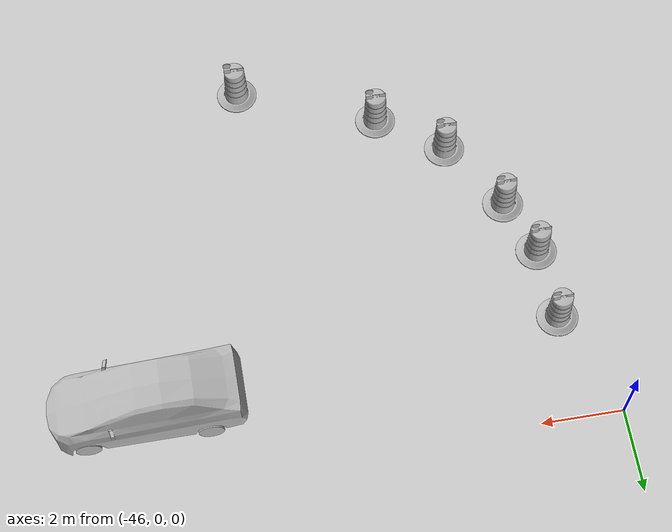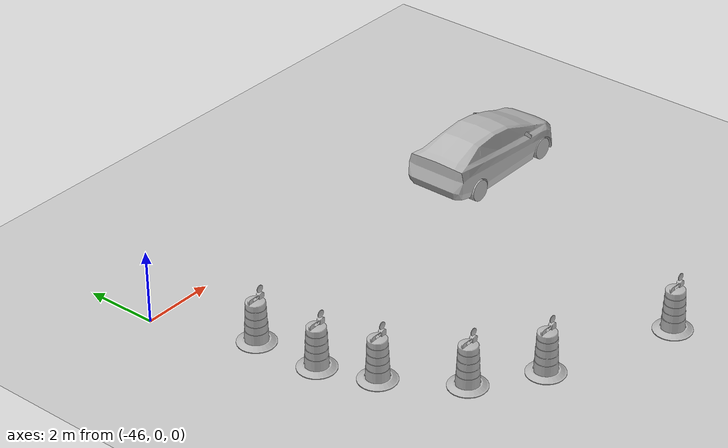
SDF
<sdf version="1.6">
 <world name="default">
  <model name="ground_plane">
   <static>1</static>
   <link name="link">
    <collision name="collision">
     <geometry><plane><normal>0 0 1</normal><size>100 100</size></plane></geometry>
     <surface>
      <contact><collide_bitmask>65535</collide_bitmask></contact>
      <friction><ode><mu>100</mu><mu2>50</mu2></ode></friction>
     </surface>
    </collision>
    <visual name="visual">
     <cast_shadows>0</cast_shadows>
     <geometry><plane><normal>0 0 1</normal><size>100 100</size></plane></geometry>
     <material>
      <script><uri>file://media/materials/scripts/gazebo.material</uri><name>Gazebo/Grey</name></script>
     </material>
    </visual>
   </link>
  </model>
  <model name="prius">
   <link name="base_link">
    <inertial>
     <mass>1</mass>
     <inertia><ixx>0.001</ixx><ixy>0</ixy><ixz>0</ixz><iyy>0.001</iyy><iyz>0</iyz><izz>0.001</izz></inertia>
    </inertial>
   </link>
   <link name="chassis">
    <pose>1.45 0 0 0 -0 1.57</pose>
    <inertial>
     <pose>-0 -0.002735 0.483209 0 -0 1.5708</pose>
     <mass>1371</mass>
     <inertia>
      <ixx>2591.3</ixx>
      <ixy>0.000184475</ixy>
      <ixz>-0.702035</ixz>
      <iyy>651.702</iyy>
      <iyz>2.57872e-06</iyz>
      <izz>2744.57</izz>
     </inertia>
    </inertial>
    <collision name="chassis_collision">
     <pose>0 0.05 0.625 0 -0 0</pose>
     <geometry><box><size>1.7526 2.1 0.95</size></box></geometry>
    </collision>
    <collision name="chassis_fixed_joint_lump__front_bumper_collision_1">
     <pose>0 -2 0.458488 0 -0 0</pose>
     <geometry><box><size>1.33728 0.48 0.566691</size></box></geometry>
    </collision>
    <collision name="chassis_fixed_joint_lump__hood_collision_2">
     <pose>0 -1.90084 0.676305 0.341247 -0 0</pose>
     <geometry><box><size>1.59797 0.493107 0.265468</size></box></geometry>
    </collision>
    <collision name="chassis_fixed_joint_lump__windshield_collision_3">
     <pose>0 -0.875105 1.03227 0.335476 -0 0</pose>
     <geometry><box><size>1.16838 1.65425 0.272347</size></box></geometry>
    </collision>
    <collision name="chassis_fixed_joint_lump__top_front_collision_4">
     <pose>0 0.161236 1.38604 0.13503 -0 0</pose>
     <geometry><box><size>1.27915 0.625988 0.171868</size></box></geometry>
    </collision>
    <collision name="chassis_fixed_joint_lump__top_rear_collision_5">
     <pose>0 0.817696 1.36007 -0.068997 0 0</pose>
     <geometry><box><size>1.28513 0.771189 0.226557</size></box></geometry>
    </collision>
    <collision name="chassis_fixed_joint_lump__rear_window_collision_6">
     <pose>0 1.64053 1.17513 -0.262017 0 0</pose>
     <geometry><box><size>1.26785 1.11634 0.244286</size></box></geometry>
    </collision>
    <collision name="chassis_fixed_joint_lump__trunk_collision_7">
     <pose>0 1.63706 0.88818 0 -0 0</pose>
     <geometry><box><size>1.78806 1.13899 0.482746</size></box></geometry>
    </collision>
    <collision name="chassis_fixed_joint_lump__back_bumper_collision_8">
     <pose>0 2.05445 0.57787 0 -0 0</pose>
     <geometry><box><size>1.78165 0.512093 0.581427</size></box></geometry>
    </collision>
    <visual name="chassis_visual">
     <geometry>
      <mesh><scale>0.01 0.01 0.01</scale><uri>model://../../prius_description/meshes/hybrid_body.obj</uri></mesh>
     </geometry>
    </visual>
    <sensor name="center_laser_sensor" type="ray">
     <ray>
      <scan>
       <horizontal>
        <samples>512</samples>
        <resolution>1</resolution>
        <min_angle>-3.14</min_angle>
        <max_angle>3.14</max_angle>
       </horizontal>
       <vertical><samples>16</samples><min_angle>-0.1</min_angle><max_angle>-0.35</max_angle></vertical>
      </scan>
      <range><min>0.2</min><max>30</max><resolution>0.01</resolution></range>
     </ray>
     <plugin name="center_laser" filename="libgazebo_ros_block_laser.so">
      <topicName>/prius/center_laser/scan</topicName>
      <frameName>center_laser_link</frameName>
      <gaussianNoise>0.01</gaussianNoise>
      <robotNamespace>/</robotNamespace>
     </plugin>
     <always_on>1</always_on>
     <update_rate>30</update_rate>
     <visualize>0</visualize>
     <pose>0 0.4 1.8 0 0 -1.5707</pose>
    </sensor>
    <sensor name="front_camera_sensor" type="camera">
     <update_rate>30</update_rate>
     <camera name="front_camera">
      <horizontal_fov>1.39626</horizontal_fov>
      <image><width>800</width><height>800</height><format>R8G8B8</format></image>
      <clip><near>0.02</near><far>300</far></clip>
      <noise><type>gaussian</type><mean>0</mean><stddev>0.007</stddev></noise>
     </camera>
     <plugin name="front_camera_controller" filename="libgazebo_ros_camera.so">
      <alwaysOn>1</alwaysOn>
      <updateRate>0.0</updateRate>
      <cameraName>/prius/front_camera</cameraName>
      <imageTopicName>image_raw</imageTopicName>
      <cameraInfoTopicName>/prius/front_camera_info</cameraInfoTopicName>
      <frameName>camera_link</frameName>
      <hackBaseline>0.07</hackBaseline>
      <distortionK1>0.0</distortionK1>
      <distortionK2>0.0</distortionK2>
      <distortionK3>0.0</distortionK3>
      <distortionT1>0.0</distortionT1>
      <distortionT2>0.0</distortionT2>
      <robotNamespace>/</robotNamespace>
     </plugin>
     <pose>0 -0.4 1.4 0 0.05 -1.5707</pose>
    </sensor>
   </link>
   <joint name="base_link_connection" type="revolute">
    <child>chassis</child>
    <parent>base_link</parent>
    <axis>
     <limit><lower>0</lower><upper>0</upper></limit>
     <dynamics>
      <damping>0</damping>
      <friction>0</friction>
      <spring_reference>0</spring_reference>
      <spring_stiffness>0</spring_stiffness>
     </dynamics>
     <use_parent_model_frame>1</use_parent_model_frame>
     <xyz>0 0 1</xyz>
    </axis>
    <physics><ode><limit><cfm>0</cfm><erp>0.2</erp></limit></ode></physics>
   </joint>
   <link name="fl_axle">
    <pose>2.86061 0.765877 0.3 0 -0 1.57</pose>
    <inertial>
     <mass>1</mass>
     <inertia><ixx>0.004</ixx><ixy>0</ixy><ixz>0</ixz><iyy>0.004</iyy><iyz>0</iyz><izz>0.004</izz></inertia>
    </inertial>
   </link>
   <joint name="front_left_steer_joint" type="revolute">
    <child>fl_axle</child>
    <parent>chassis</parent>
    <axis>
     <xyz>0 0 1</xyz>
     <limit><lower>-1e+16</lower><upper>1e+16</upper></limit>
     <dynamics><spring_reference>0</spring_reference><spring_stiffness>0</spring_stiffness></dynamics>
     <use_parent_model_frame>1</use_parent_model_frame>
    </axis>
   </joint>
   <link name="front_left_wheel">
    <pose>2.86061 0.765877 0.3 0 -0 1.57</pose>
    <inertial>
     <mass>11</mass>
     <inertia>
      <ixx>0.586312</ixx>
      <ixy>0</ixy>
      <ixz>0</ixz>
      <iyy>0.335529</iyy>
      <iyz>0</iyz>
      <izz>0.335529</izz>
     </inertia>
    </inertial>
    <collision name="front_left_wheel_collision_collision">
     <geometry><sphere><radius>0.31265</radius></sphere></geometry>
     <surface>
      <contact><ode><kp>1e+08</kp><min_depth>0.005</min_depth></ode></contact>
      <friction><ode><mu>0.9</mu><mu2>0.9</mu2></ode></friction>
     </surface>
    </collision>
    <visual name="front_left_wheel_visual">
     <geometry>
      <mesh><scale>0.01 0.01 0.01</scale><uri>model://../../prius_description/meshes/wheel.obj</uri></mesh>
     </geometry>
     <material><script><uri>__default__</uri><name>__default__</name></script></material>
    </visual>
   </link>
   <joint name="front_left_wheel_joint" type="revolute">
    <child>front_left_wheel</child>
    <parent>fl_axle</parent>
    <axis>
     <xyz>0.000796 1 0</xyz>
     <limit><lower>-1e+16</lower><upper>1e+16</upper></limit>
     <dynamics><spring_reference>0</spring_reference><spring_stiffness>0</spring_stiffness></dynamics>
     <use_parent_model_frame>1</use_parent_model_frame>
    </axis>
   </joint>
   <link name="fr_axle">
    <pose>2.85939 -0.768123 0.3 0 -0 1.57</pose>
    <inertial>
     <mass>1</mass>
     <inertia><ixx>0.004</ixx><ixy>0</ixy><ixz>0</ixz><iyy>0.004</iyy><iyz>0</iyz><izz>0.004</izz></inertia>
    </inertial>
   </link>
   <joint name="front_right_steer_joint" type="revolute">
    <child>fr_axle</child>
    <parent>chassis</parent>
    <axis>
     <xyz>0 0 1</xyz>
     <limit><lower>-1e+16</lower><upper>1e+16</upper></limit>
     <dynamics><spring_reference>0</spring_reference><spring_stiffness>0</spring_stiffness></dynamics>
     <use_parent_model_frame>1</use_parent_model_frame>
    </axis>
   </joint>
   <link name="front_right_wheel">
    <pose>2.85939 -0.768123 0.3 0 -0 1.57</pose>
    <inertial>
     <mass>11</mass>
     <inertia>
      <ixx>0.586312</ixx>
      <ixy>0</ixy>
      <ixz>0</ixz>
      <iyy>0.335529</iyy>
      <iyz>0</iyz>
      <izz>0.335529</izz>
     </inertia>
    </inertial>
    <collision name="front_right_wheel_collision_collision">
     <geometry><sphere><radius>0.31265</radius></sphere></geometry>
     <surface>
      <contact><ode><kp>1e+08</kp><min_depth>0.005</min_depth></ode></contact>
      <friction><ode><mu>0.9</mu><mu2>0.9</mu2></ode></friction>
     </surface>
    </collision>
    <visual name="front_right_wheel_visual">
     <geometry>
      <mesh><scale>0.01 0.01 0.01</scale><uri>model://../../prius_description/meshes/wheel.obj</uri></mesh>
     </geometry>
     <material><script><uri>__default__</uri><name>__default__</name></script></material>
    </visual>
   </link>
   <joint name="front_right_wheel_joint" type="revolute">
    <child>front_right_wheel</child>
    <parent>fr_axle</parent>
    <axis>
     <xyz>0.000796 1 0</xyz>
     <limit><lower>-1e+16</lower><upper>1e+16</upper></limit>
     <dynamics><spring_reference>0</spring_reference><spring_stiffness>0</spring_stiffness></dynamics>
     <use_parent_model_frame>1</use_parent_model_frame>
    </axis>
   </joint>
   <link name="rear_left_wheel">
    <pose>0.000632 0.794154 0.3 0 -0 1.57</pose>
    <inertial>
     <mass>11</mass>
     <inertia>
      <ixx>0.586312</ixx>
      <ixy>0</ixy>
      <ixz>0</ixz>
      <iyy>0.335529</iyy>
      <iyz>0</iyz>
      <izz>0.335529</izz>
     </inertia>
    </inertial>
    <collision name="rear_left_wheel_collision_collision">
     <geometry><sphere><radius>0.31265</radius></sphere></geometry>
     <surface>
      <contact><ode><kp>1e+08</kp><min_depth>0.005</min_depth></ode></contact>
      <friction><ode><mu>0.9</mu><mu2>0.9</mu2></ode></friction>
     </surface>
    </collision>
    <visual name="rear_left_wheel_visual">
     <geometry>
      <mesh><scale>0.01 0.01 0.01</scale><uri>model://../../prius_description/meshes/wheel.obj</uri></mesh>
     </geometry>
     <material><script><uri>__default__</uri><name>__default__</name></script></material>
    </visual>
   </link>
   <joint name="rear_left_wheel_joint" type="revolute">
    <child>rear_left_wheel</child>
    <parent>chassis</parent>
    <axis>
     <xyz>0.000796 1 0</xyz>
     <limit><lower>-1e+16</lower><upper>1e+16</upper></limit>
     <dynamics><spring_reference>0</spring_reference><spring_stiffness>0</spring_stiffness></dynamics>
     <use_parent_model_frame>1</use_parent_model_frame>
    </axis>
   </joint>
   <link name="rear_right_wheel">
    <pose>-0.000631 -0.791845 0.3 0 -0 1.57</pose>
    <inertial>
     <mass>11</mass>
     <inertia>
      <ixx>0.586312</ixx>
      <ixy>0</ixy>
      <ixz>0</ixz>
      <iyy>0.335529</iyy>
      <iyz>0</iyz>
      <izz>0.335529</izz>
     </inertia>
    </inertial>
    <collision name="rear_right_wheel_collision_collision">
     <geometry><sphere><radius>0.31265</radius></sphere></geometry>
     <surface>
      <contact><ode><kp>1e+08</kp><min_depth>0.005</min_depth></ode></contact>
      <friction><ode><mu>0.9</mu><mu2>0.9</mu2></ode></friction>
     </surface>
    </collision>
    <visual name="rear_right_wheel_visual">
     <geometry>
      <mesh><scale>0.01 0.01 0.01</scale><uri>model://../../prius_description/meshes/wheel.obj</uri></mesh>
     </geometry>
     <material><script><uri>__default__</uri><name>__default__</name></script></material>
    </visual>
   </link>
   <joint name="rear_right_wheel_joint" type="revolute">
    <child>rear_right_wheel</child>
    <parent>chassis</parent>
    <axis>
     <xyz>0.000796 1 0</xyz>
     <limit><lower>-1e+16</lower><upper>1e+16</upper></limit>
     <dynamics><spring_reference>0</spring_reference><spring_stiffness>0</spring_stiffness></dynamics>
     <use_parent_model_frame>1</use_parent_model_frame>
    </axis>
   </joint>
   <link name="steering_wheel">
    <pose>2.07815 0.357234 0.988243 -1.3021 0 1.57</pose>
    <inertial>
     <mass>1</mass>
     <inertia><ixx>0.145833</ixx><ixy>0</ixy><ixz>0</ixz><iyy>0.145833</iyy><iyz>0</iyz><izz>0.125</izz></inertia>
    </inertial>
    <visual name="steering_wheel_visual">
     <pose>0 0 0 1.3021 -0 0</pose>
     <geometry>
      <mesh><scale>0.01 0.01 0.01</scale><uri>model://../../prius_description/meshes/steering_wheel.obj</uri></mesh>
     </geometry>
    </visual>
   </link>
   <joint name="steering_joint" type="revolute">
    <child>steering_wheel</child>
    <parent>chassis</parent>
    <axis>
     <xyz>-0.964118 0.000768 0.265474</xyz>
     <limit><lower>-1e+16</lower><upper>1e+16</upper></limit>
     <dynamics><spring_reference>0</spring_reference><spring_stiffness>0</spring_stiffness></dynamics>
     <use_parent_model_frame>1</use_parent_model_frame>
    </axis>
   </joint>
   <plugin name="pruis_hybrid_drive" filename="libPriusHybridPlugin.so">
    <chassis>chassis</chassis>
    <front_left_wheel>front_left_wheel_joint</front_left_wheel>
    <front_right_wheel>front_right_wheel_joint</front_right_wheel>
    <front_left_wheel_steering>front_left_steer_joint</front_left_wheel_steering>
    <front_right_wheel_steering>front_right_steer_joint</front_right_wheel_steering>
    <back_left_wheel>rear_left_wheel_joint</back_left_wheel>
    <back_right_wheel>rear_right_wheel_joint</back_right_wheel>
    <steering_wheel>steering_joint</steering_wheel>
    <chassis_aero_force_gain>0.63045</chassis_aero_force_gain>
    <front_torque>859.4004393000001</front_torque>
    <back_torque>0</back_torque>
    <front_brake_torque>1031.28052716</front_brake_torque>
    <back_brake_torque>687.5203514400001</back_brake_torque>
    <max_speed>5</max_speed>
    <min_gas_flow>8.981854013171626e-05</min_gas_flow>
    <gas_efficiency>0.371</gas_efficiency>
    <battery_charge_watt_hours>291</battery_charge_watt_hours>
    <battery_discharge_watt_hours>214</battery_discharge_watt_hours>
    <max_steer>0.6458</max_steer>
    <flwheel_steering_p_gain>1e4</flwheel_steering_p_gain>
    <frwheel_steering_p_gain>1e4</frwheel_steering_p_gain>
    <flwheel_steering_i_gain>0</flwheel_steering_i_gain>
    <frwheel_steering_i_gain>0</frwheel_steering_i_gain>
    <flwheel_steering_d_gain>3e2</flwheel_steering_d_gain>
    <frwheel_steering_d_gain>3e2</frwheel_steering_d_gain>
    <robotNamespace>/</robotNamespace>
   </plugin>
   <plugin name="joint_state_publisher" filename="libgazebo_ros_joint_state_publisher.so">
    <jointName>rear_right_wheel_joint, rear_left_wheel_joint, front_right_wheel_joint, front_left_wheel_joint, front_right_steer_joint, front_left_steer_joint, steering_joint</jointName>
    <updateRate>100.0</updateRate>
    <alwaysOn>1</alwaysOn>
    <robotNamespace>/</robotNamespace>
   </plugin>
   <static>0</static>
   <plugin name="p3d" filename="libgazebo_ros_p3d.so">
    <bodyName>base_link</bodyName>
    <topicName>base_pose_ground_truth</topicName>
    <frameName>map</frameName>
    <updateRate>100.0</updateRate>
    <robotNamespace>/</robotNamespace>
   </plugin>
   <pose>-36.3484 -1.90871 0.006903 0 0.000236 0.002917</pose>
  </model>
  <model name="Construction Barrel_0_clone_86">
   <link name="link">
    <inertial>
     <pose>0 0 0.4 0 -0 0</pose>
     <mass>500</mass>
     <inertia><ixx>51.2096</ixx><iyy>51.2096</iyy><izz>25</izz><ixy>0</ixy><ixz>0</ixz><iyz>0</iyz></inertia>
    </inertial>
    <collision name="collision">
     <geometry><mesh><uri>model://construction_barrel/meshes/construction_barrel.dae</uri></mesh></geometry>
    </collision>
    <visual name="visual">
     <geometry><mesh><uri>model://construction_barrel/meshes/construction_barrel.dae</uri></mesh></geometry>
    </visual>
   </link>
   <pose>-44.986 -2.60647 -2e-06 6e-06 -4e-06 -1.5e-05</pose>
  </model>
  <model name="Construction Barrel_0_clone_87_clone">
   <link name="link">
    <inertial>
     <pose>0 0 0.4 0 -0 0</pose>
     <mass>500</mass>
     <inertia><ixx>51.2096</ixx><iyy>51.2096</iyy><izz>25</izz><ixy>0</ixy><ixz>0</ixz><iyz>0</iyz></inertia>
    </inertial>
    <collision name="collision">
     <geometry><mesh><uri>model://construction_barrel/meshes/construction_barrel.dae</uri></mesh></geometry>
    </collision>
    <visual name="visual">
     <geometry><mesh><uri>model://construction_barrel/meshes/construction_barrel.dae</uri></mesh></geometry>
    </visual>
   </link>
   <pose>-44.8686 -4.42703 -0 0 0 -1.1e-05</pose>
  </model>
  <model name="Construction Barrel_0_clone_87_clone_0">
   <link name="link">
    <inertial>
     <pose>0 0 0.4 0 -0 0</pose>
     <mass>500</mass>
     <inertia><ixx>51.2096</ixx><iyy>51.2096</iyy><izz>25</izz><ixy>0</ixy><ixz>0</ixz><iyz>0</iyz></inertia>
    </inertial>
    <collision name="collision">
     <geometry><mesh><uri>model://construction_barrel/meshes/construction_barrel.dae</uri></mesh></geometry>
    </collision>
    <visual name="visual">
     <geometry><mesh><uri>model://construction_barrel/meshes/construction_barrel.dae</uri></mesh></geometry>
    </visual>
   </link>
   <pose>-44.3291 -5.85437 -0 0 0 -1.1e-05</pose>
  </model>
  <model name="Construction Barrel_0_clone_87_clone_2">
   <link name="link">
    <inertial>
     <pose>0 0 0.4 0 -0 0</pose>
     <mass>500</mass>
     <inertia><ixx>51.2096</ixx><iyy>51.2096</iyy><izz>25</izz><ixy>0</ixy><ixz>0</ixz><iyz>0</iyz></inertia>
    </inertial>
    <collision name="collision">
     <geometry><mesh><uri>model://construction_barrel/meshes/construction_barrel.dae</uri></mesh></geometry>
    </collision>
    <visual name="visual">
     <geometry><mesh><uri>model://construction_barrel/meshes/construction_barrel.dae</uri></mesh></geometry>
    </visual>
   </link>
   <pose>-43.1873 -7.65996 -0 0 0 -0.028557</pose>
  </model>
  <model name="Construction Barrel_0_clone_87_clone_2_clone">
   <link name="link">
    <inertial>
     <pose>0 0 0.4 0 -0 0</pose>
     <mass>500</mass>
     <inertia><ixx>51.2096</ixx><iyy>51.2096</iyy><izz>25</izz><ixy>0</ixy><ixz>0</ixz><iyz>0</iyz></inertia>
    </inertial>
    <collision name="collision">
     <geometry><mesh><uri>model://construction_barrel/meshes/construction_barrel.dae</uri></mesh></geometry>
    </collision>
    <visual name="visual">
     <geometry><mesh><uri>model://construction_barrel/meshes/construction_barrel.dae</uri></mesh></geometry>
    </visual>
   </link>
   <pose>-41.5931 -8.77261 -2e-06 6e-06 -4e-06 -0.028548</pose>
  </model>
  <model name="Construction Barrel_0_clone_87_clone_2_clone_1">
   <link name="link">
    <inertial>
     <pose>0 0 0.4 0 -0 0</pose>
     <mass>500</mass>
     <inertia><ixx>51.2096</ixx><iyy>51.2096</iyy><izz>25</izz><ixy>0</ixy><ixz>0</ixz><iyz>0</iyz></inertia>
    </inertial>
    <collision name="collision">
     <geometry><mesh><uri>model://construction_barrel/meshes/construction_barrel.dae</uri></mesh></geometry>
    </collision>
    <visual name="visual">
     <geometry><mesh><uri>model://construction_barrel/meshes/construction_barrel.dae</uri></mesh></geometry>
    </visual>
   </link>
   <pose>-38.18 -10.1202 -0 0 0 -0.028548</pose>
  </model>
 </world>
</sdf>
